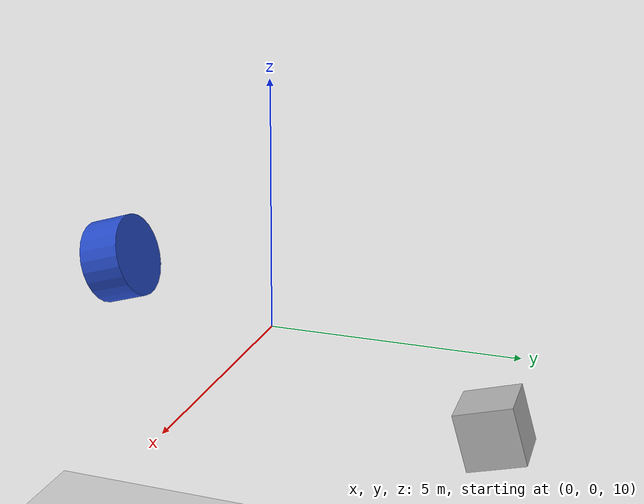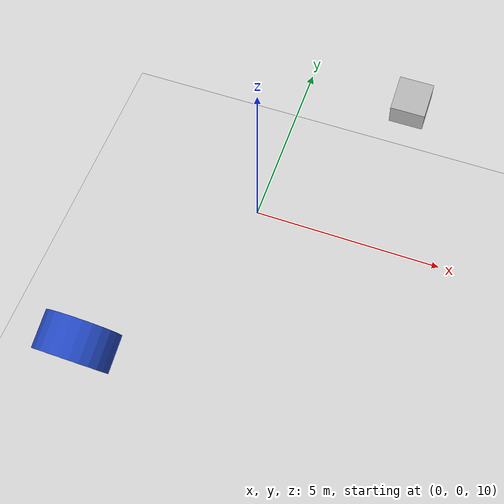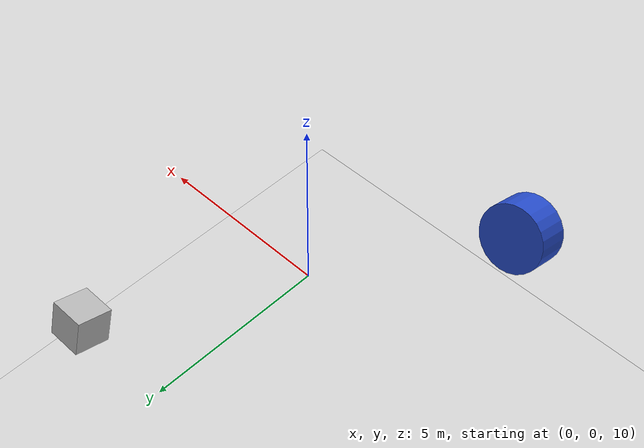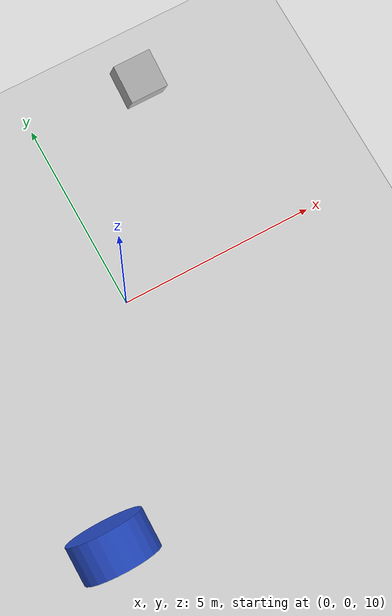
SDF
<?xml version="1.0" ?>
<sdf version="1.6">
  <world name="example_world">
  <!-- Ground Plane -->
    <include>
      <uri>model://ground_plane</uri>
    </include>
     <include>
      <uri>model://sun</uri>
    </include>
        <!-- Gazebo ROS Factory Plugin -->
    <plugin name="gazebo_ros_factory" filename="libgazebo_ros_factory.so">
  <ros>
    <namespace>/</namespace>
  </ros>
</plugin>

       <!-- Custom Models -->
    <model name="box">
      <static>true</static>
       <pose>3 5 10 5 0 0</pose> <!-- Position and orientation -->
      <link name="box_link">
        <visual name="box_visual">
          <geometry>
            <box>
              <size>1 1 1</size>
            </box>
          </geometry>
        </visual>
      </link>
    </model>

           <!-- Custom Models -->
    <model name="circle">
      <static>true</static>
       <pose>-3 -5 10 5 0 0</pose> <!-- Position and orientation -->
      <link name="circle_link">
        <visual name="circle_visual">
             <geometry>
            <cylinder>
              <radius>1.0</radius>  <!-- Radius of the circle -->
              <length>1.0</length>  <!-- Thickness (height) of the circle -->
            </cylinder>
          </geometry>
          <material>
            <script>
              <uri>file://media/materials/scripts/gazebo.material</uri>
              <name>Gazebo/Blue</name>
            </script>
          </material>
        </visual>
      </link>
    </model>

    </world>
</sdf>
